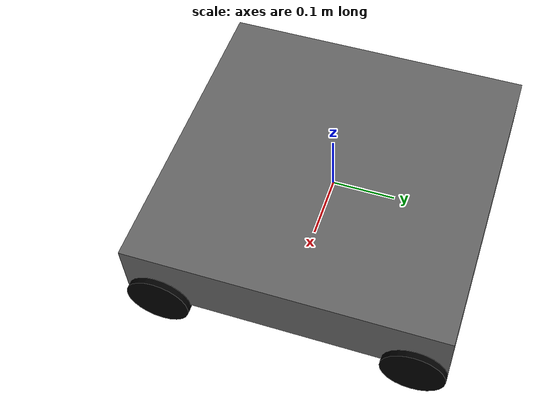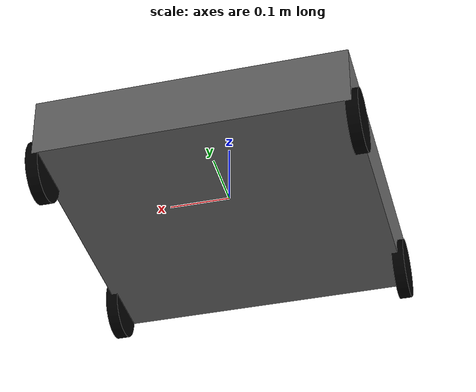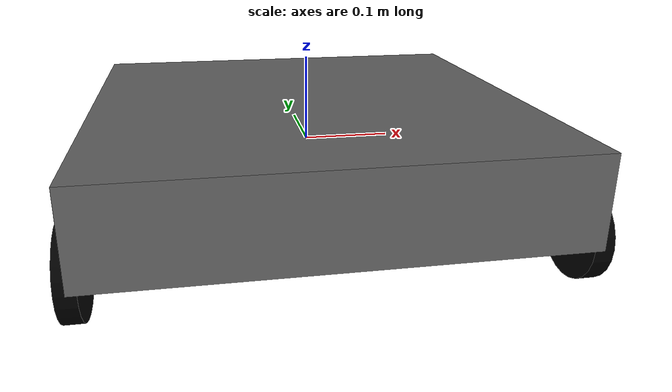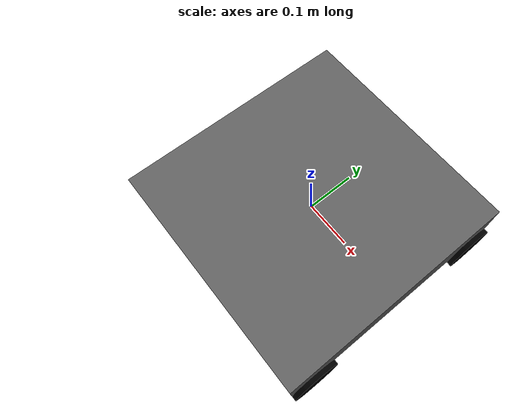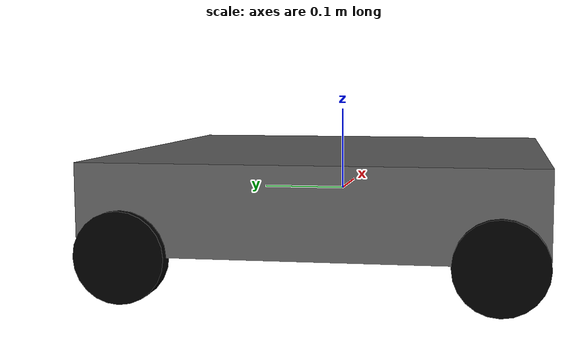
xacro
<?xml version="1.0"?>
<robot name="four_wheel_rover" xmlns:xacro="http://www.ros.org/wiki/xacro">

  <xacro:property name="wheel_radius" value="0.05"/>
  <xacro:property name="wheel_width" value="0.02"/>
  <xacro:property name="wheel_separation" value="0.4"/>
  <xacro:property name="base_length" value="0.5"/>

  <!-- Base link -->
  <link name="base_link">
    <visual>
      <geometry>
        <box size="${base_length} ${wheel_separation+0.1} 0.1"/>
      </geometry>
      <material name='gray'><color rgba="0.4 0.4 0.4 1.0"/></material>
    </visual>
    <collision>
      <geometry>
        <box size="${base_length} ${wheel_separation+0.1} 0.1"/>
      </geometry>
    </collision>
    <inertial>
      <mass value="10"/>
      <inertia ixx="0.1" iyy="0.1" izz="0.1" ixy="0" ixz="0" iyz="0"/>
    </inertial>
  </link>

  <!-- Wheels -->
  <xacro:macro name="wheel" params="name x y">
  <link name="${name}">
    <visual>
      <geometry>
        <cylinder length="${wheel_width}" radius="${wheel_radius}"/>
      </geometry>
      <material name="black">
        <color rgba="0 0 0 1"/>
      </material>
    </visual>
    <collision>
      <geometry>
        <cylinder length="${wheel_width}" radius="${wheel_radius}"/>
      </geometry>
    </collision>
    <inertial>
    <mass value="1.0"/>
    <inertia ixx="0.001" iyy="0.001" izz="0.001"
            ixy="0.0" ixz="0.0" iyz="0.0"/>
    </inertial>

  </link>

  <joint name="${name}_joint" type="continuous">
    <parent link="base_link"/>
    <child link="${name}"/>
    <origin xyz="${x} ${y} -${wheel_radius}" rpy="0 1.5708 0"/>
    <axis xyz="0 0 1"/>
  </joint>
</xacro:macro>

  <xacro:wheel name="front_left_wheel"  x="${base_length/2}"  y="${ wheel_separation/2}"/>
  <xacro:wheel name="front_right_wheel" x="${base_length/2}"  y="-${wheel_separation/2}"/>
  <xacro:wheel name="rear_left_wheel"   x="-${base_length/2}" y="${ wheel_separation/2}"/>
  <xacro:wheel name="rear_right_wheel"  x="-${base_length/2}" y="-${wheel_separation/2}"/>

  <!-- Gazebo plugin -->
  <gazebo>
  <plugin name="diff_drive" filename="libgazebo_ros_diff_drive.so">
    <ros>
      <namespace>/</namespace>
      <remapping>cmd_vel:=/cmd_vel</remapping>
    </ros>
    <update_rate>50</update_rate>

    <left_joint>rear_left_wheel_joint</left_joint>
    <right_joint>rear_right_wheel_joint</right_joint>

    <wheel_separation>${wheel_separation}</wheel_separation>
    <wheel_diameter>${wheel_radius * 2}</wheel_diameter>
    <publish_odom>true</publish_odom>
    <odom_frame>odom</odom_frame>
    <robot_base_frame>base_link</robot_base_frame>
    </plugin>
  </gazebo>

</robot>
